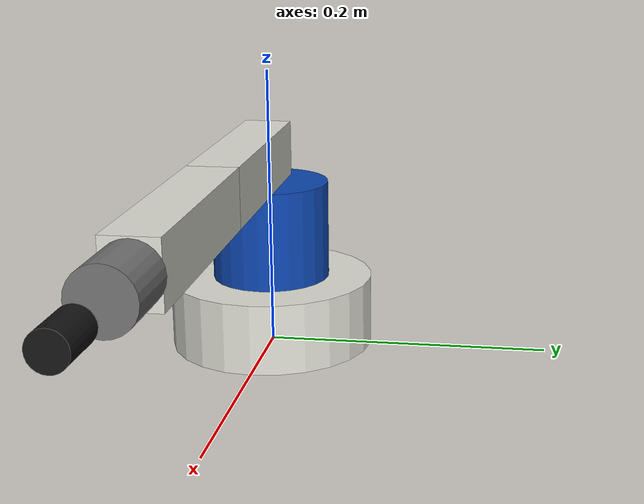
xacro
<?xml version="1.0"?>

<robot xmlns:xacro="http://www.ros.org/wiki/xacro" name="dobot_magician_lite">
  <xacro:arg name="controllers_file" default=""/>
  <xacro:arg name="enable_gazebo" default="false"/>

  <!-- Dimensions in meters -->

  <xacro:property name="base_radius" value="0.073"/>
  <xacro:property name="base_height" value="0.050"/>

  <xacro:property name="pedestal_radius" value="0.042"/>
  <xacro:property name="pedestal_height" value="0.070"/>

  <xacro:property name="shoulder_height" value="0.095"/>
  <xacro:property name="upper_arm_length" value="0.150"/>
  <xacro:property name="forearm_length" value="0.150"/>
  <xacro:property name="wrist_length" value="0.040"/>
  <xacro:property name="tool_length" value="0.030"/>

  <xacro:property name="arm_width" value="0.032"/>
  <xacro:property name="arm_height" value="0.038"/>
  <xacro:property name="wrist_radius" value="0.018"/>

  <!-- Joint limits in radians -->
  <xacro:property name="j1_lower" value="-2.35619449"/>
  <xacro:property name="j1_upper" value="2.35619449"/>

  <xacro:property name="j2_lower" value="-0.08726646"/>
  <xacro:property name="j2_upper" value="1.39626340"/>

  <xacro:property name="j3_lower" value="-0.17453293"/>
  <xacro:property name="j3_upper" value="1.48352986"/>

  <xacro:property name="j4_lower" value="-2.53072742"/>
  <xacro:property name="j4_upper" value="2.53072742"/>

  <!-- Speed limits from 300 deg/s for J1-J3 and 200 deg/s for J4 -->
  <xacro:property name="j123_velocity" value="5.23598776"/>
  <xacro:property name="j4_velocity" value="3.49065850"/>

  <!-- Conservative placeholder effort limits for visualization / planning sanity only -->
  <xacro:property name="j_effort" value="5.0"/>

  <!-- Materials -->
  <material name="dobot_white">
    <color rgba="0.88 0.88 0.84 1.0"/>
  </material>

  <material name="dobot_gray">
    <color rgba="0.45 0.45 0.45 1.0"/>
  </material>

  <material name="dobot_dark">
    <color rgba="0.08 0.08 0.08 1.0"/>
  </material>

  <material name="dobot_blue">
    <color rgba="0.05 0.28 0.70 1.0"/>
  </material>

  <!-- Root footprint -->
  <link name="base_footprint"/>

  <joint name="base_footprint_joint" type="fixed">
    <parent link="base_footprint"/>
    <child link="base_link"/>
    <origin xyz="0 0 0" rpy="0 0 0"/>
  </joint>

  <!-- Base -->
  <link name="base_link">
    <visual>
      <origin xyz="0 0 ${base_height / 2.0}" rpy="0 0 0"/>
      <geometry>
        <cylinder radius="${base_radius}" length="${base_height}"/>
      </geometry>
      <material name="dobot_white"/>
    </visual>
    <collision>
      <origin xyz="0 0 ${base_height / 2.0}" rpy="0 0 0"/>
      <geometry>
        <cylinder radius="${base_radius}" length="${base_height}"/>
      </geometry>
    </collision>
    <inertial>
      <origin xyz="0 0 ${base_height / 2.0}" rpy="0 0 0"/>
      <mass value="1.0"/>
      <inertia ixx="0.002" ixy="0.0" ixz="0.0" iyy="0.002" iyz="0.0" izz="0.003"/>
    </inertial>
  </link>

  <!-- J1 yaw -->
  <joint name="joint_1" type="revolute">
    <parent link="base_link"/>
    <child link="shoulder_link"/>
    <origin xyz="0 0 ${base_height}" rpy="0 0 0"/>
    <axis xyz="0 0 1"/>
    <limit lower="${j1_lower}" upper="${j1_upper}" effort="${j_effort}" velocity="${j123_velocity}"/>
  </joint>

  <link name="shoulder_link">
    <visual>
      <origin xyz="0 0 ${pedestal_height / 2.0}" rpy="0 0 0"/>
      <geometry>
        <cylinder radius="${pedestal_radius}" length="${pedestal_height}"/>
      </geometry>
      <material name="dobot_blue"/>
    </visual>
    <collision>
      <origin xyz="0 0 ${pedestal_height / 2.0}" rpy="0 0 0"/>
      <geometry>
        <cylinder radius="${pedestal_radius}" length="${pedestal_height}"/>
      </geometry>
    </collision>
    <inertial>
      <origin xyz="0 0 ${pedestal_height / 2.0}" rpy="0 0 0"/>
      <mass value="0.6"/>
      <inertia ixx="0.001" ixy="0.0" ixz="0.0" iyy="0.001" iyz="0.0" izz="0.001"/>
    </inertial>
  </link>

  <!-- Positive simulation pitch lifts the arm above the tabletop. Hardware
       angle conventions and the real parallelogram linkage are not modeled. -->
  <!-- J2 shoulder pitch -->
  <joint name="joint_2" type="revolute">
    <parent link="shoulder_link"/>
    <child link="upper_arm_link"/>
    <origin xyz="0 0 ${shoulder_height}" rpy="0 0 0"/>
    <axis xyz="0 -1 0"/>
    <limit lower="${j2_lower}" upper="${j2_upper}" effort="${j_effort}" velocity="${j123_velocity}"/>
  </joint>

  <link name="upper_arm_link">
    <visual>
      <origin xyz="${upper_arm_length / 2.0} 0 0" rpy="0 0 0"/>
      <geometry>
        <box size="${upper_arm_length} ${arm_width} ${arm_height}"/>
      </geometry>
      <material name="dobot_white"/>
    </visual>
    <collision>
      <origin xyz="${upper_arm_length / 2.0} 0 0" rpy="0 0 0"/>
      <geometry>
        <box size="${upper_arm_length} ${arm_width} ${arm_height}"/>
      </geometry>
    </collision>
    <inertial>
      <origin xyz="${upper_arm_length / 2.0} 0 0" rpy="0 0 0"/>
      <mass value="0.35"/>
      <inertia ixx="0.0002" ixy="0.0" ixz="0.0" iyy="0.0010" iyz="0.0" izz="0.0010"/>
    </inertial>
  </link>

  <!-- J3 elbow pitch -->
  <joint name="joint_3" type="revolute">
    <parent link="upper_arm_link"/>
    <child link="forearm_link"/>
    <origin xyz="${upper_arm_length} 0 0" rpy="0 0 0"/>
    <axis xyz="0 -1 0"/>
    <limit lower="${j3_lower}" upper="${j3_upper}" effort="${j_effort}" velocity="${j123_velocity}"/>
  </joint>

  <link name="forearm_link">
    <visual>
      <origin xyz="${forearm_length / 2.0} 0 0" rpy="0 0 0"/>
      <geometry>
        <box size="${forearm_length} ${arm_width} ${arm_height}"/>
      </geometry>
      <material name="dobot_white"/>
    </visual>
    <collision>
      <origin xyz="${forearm_length / 2.0} 0 0" rpy="0 0 0"/>
      <geometry>
        <box size="${forearm_length} ${arm_width} ${arm_height}"/>
      </geometry>
    </collision>
    <inertial>
      <origin xyz="${forearm_length / 2.0} 0 0" rpy="0 0 0"/>
      <mass value="0.30"/>
      <inertia ixx="0.0002" ixy="0.0" ixz="0.0" iyy="0.0008" iyz="0.0" izz="0.0008"/>
    </inertial>
  </link>

  <!-- J4 end-tool yaw / rotation -->
  <joint name="joint_4" type="revolute">
    <parent link="forearm_link"/>
    <child link="wrist_link"/>
    <origin xyz="${forearm_length} 0 0" rpy="0 0 0"/>
    <axis xyz="0 0 1"/>
    <limit lower="${j4_lower}" upper="${j4_upper}" effort="${j_effort}" velocity="${j4_velocity}"/>
  </joint>

  <link name="wrist_link">
    <visual>
      <origin xyz="${wrist_length / 2.0} 0 0" rpy="0 1.57079632679 0"/>
      <geometry>
        <cylinder radius="${wrist_radius}" length="${wrist_length}"/>
      </geometry>
      <material name="dobot_gray"/>
    </visual>
    <collision>
      <origin xyz="${wrist_length / 2.0} 0 0" rpy="0 1.57079632679 0"/>
      <geometry>
        <cylinder radius="${wrist_radius}" length="${wrist_length}"/>
      </geometry>
    </collision>
    <inertial>
      <origin xyz="${wrist_length / 2.0} 0 0" rpy="0 0 0"/>
      <mass value="0.15"/>
      <inertia ixx="0.00005" ixy="0.0" ixz="0.0" iyy="0.00005" iyz="0.0" izz="0.00005"/>
    </inertial>
  </link>

  <!-- Tool-center-point frame -->
  <joint name="tool0_joint" type="fixed">
    <parent link="wrist_link"/>
    <child link="tool0"/>
    <origin xyz="${wrist_length + tool_length} 0 0" rpy="0 0 0"/>
  </joint>

  <link name="tool0">
    <visual>
      <origin xyz="${tool_length / 2.0} 0 0" rpy="0 1.57079632679 0"/>
      <geometry>
        <cylinder radius="0.010" length="${tool_length}"/>
      </geometry>
      <material name="dobot_dark"/>
    </visual>
    <collision>
      <origin xyz="${tool_length / 2.0} 0 0" rpy="0 1.57079632679 0"/>
      <geometry>
        <cylinder radius="0.010" length="${tool_length}"/>
      </geometry>
    </collision>
    <inertial>
      <origin xyz="${tool_length / 2.0} 0 0" rpy="0 0 0"/>
      <mass value="0.05"/>
      <inertia ixx="0.00001" ixy="0.0" ixz="0.0" iyy="0.00001" iyz="0.0" izz="0.00001"/>
    </inertial>
  </link>
  <xacro:if value="$(arg enable_gazebo)">
  <!-- Mount the tabletop robot without making the articulated links static. -->
  <link name="world"/>
  <joint name="world_mount" type="fixed">
    <parent link="world"/>
    <child link="base_footprint"/>
  </joint>
  <gazebo>
    <plugin name="gazebo_ros2_control" filename="libgazebo_ros2_control.so">
      <robot_param>robot_description</robot_param>
      <robot_param_node>robot_state_publisher</robot_param_node>
      <controller_manager_name>controller_manager</controller_manager_name>
      <hold_joints>true</hold_joints>
      <ros><namespace>/</namespace></ros>
      <parameters>$(arg controllers_file)</parameters>
    </plugin>
  </gazebo>
  <ros2_control name="GazeboSystem" type="system">
    <hardware>
      <plugin>gazebo_ros2_control/GazeboSystem</plugin>
    </hardware>

    <joint name="joint_1">
      <command_interface name="position">
        <param name="min">${j1_lower}</param>
        <param name="max">${j1_upper}</param>
      </command_interface>
      <state_interface name="position"/>
      <state_interface name="velocity"/>
      <state_interface name="effort"/>
    </joint>

    <joint name="joint_2">
      <command_interface name="position">
        <param name="min">${j2_lower}</param>
        <param name="max">${j2_upper}</param>
      </command_interface>
      <state_interface name="position"/>
      <state_interface name="velocity"/>
      <state_interface name="effort"/>
    </joint>

    <joint name="joint_3">
      <command_interface name="position">
        <param name="min">${j3_lower}</param>
        <param name="max">${j3_upper}</param>
      </command_interface>
      <state_interface name="position"/>
      <state_interface name="velocity"/>
      <state_interface name="effort"/>
    </joint>

    <joint name="joint_4">
      <command_interface name="position">
        <param name="min">${j4_lower}</param>
        <param name="max">${j4_upper}</param>
      </command_interface>
      <state_interface name="position"/>
      <state_interface name="velocity"/>
      <state_interface name="effort"/>
    </joint>
  </ros2_control>
  </xacro:if>

</robot>
